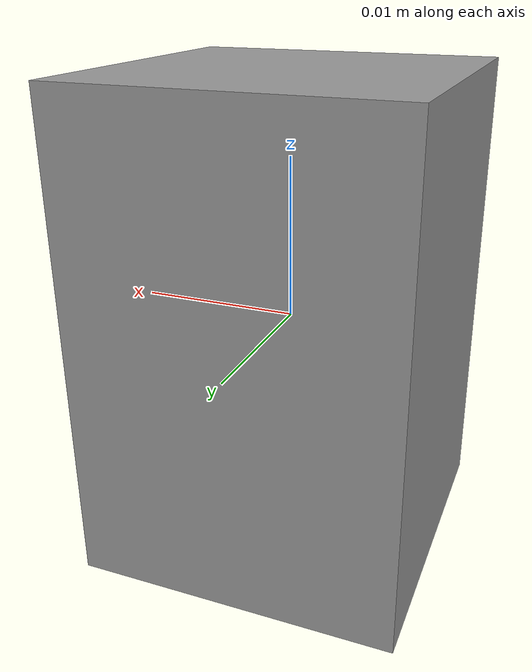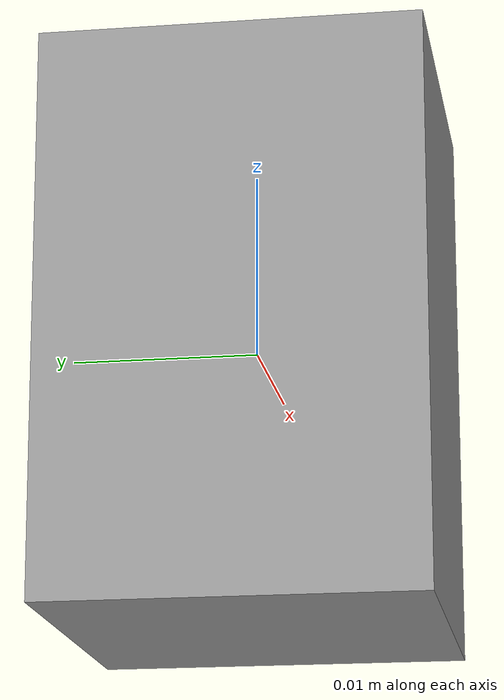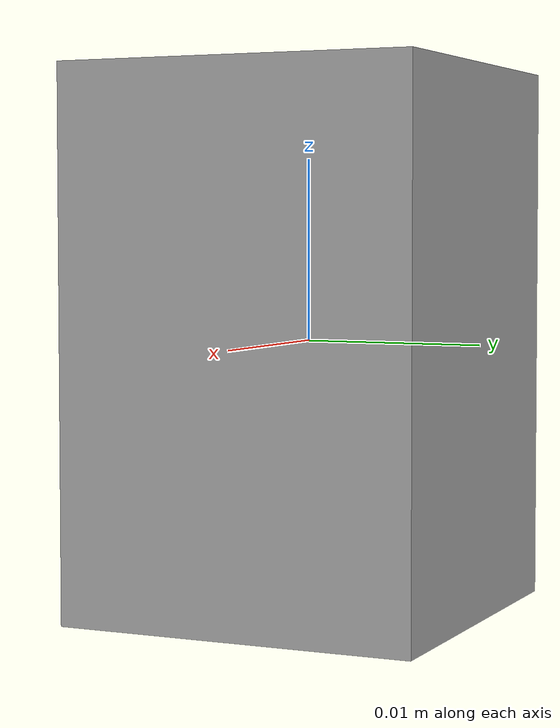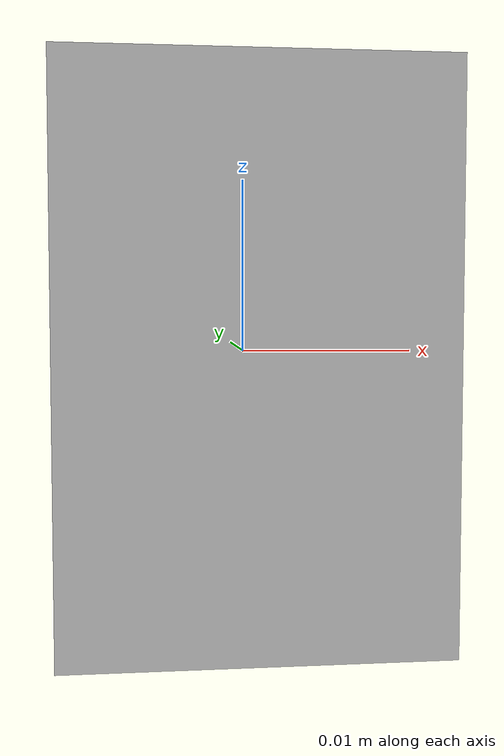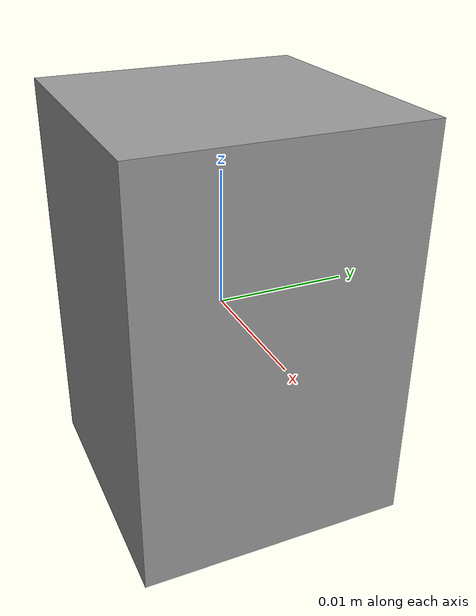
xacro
<?xml version = "1.0"?>
<robot name="armed">
  <link name="armed_link">
    <visual>
       <geometry>
	   <box size="0.02 0.02 0.03"/>
	</geometry>
    </visual>
    <collision>
       <geometry>
	   <box size="0.02 0.02 0.03"/>
	</geometry>
    </collision>
    <inertial>
    	<mass value="0.3"/>
      <inertia ixx="1.0" ixy="0" ixz="0" iyy="1.0" iyz="0" izz="1.0"/>
    </inertial>
  </link>
  <gazebo reference="armed_link">
      <dampingFactor>0.005</dampingFactor>
      <kp>1000000</kp>
      <kd>1.0</kd>
      <mu1>1.0</mu1>
      <mu2>1.0</mu2>
      <material>Gazebo/Grey</material>
  </gazebo>
</robot>
